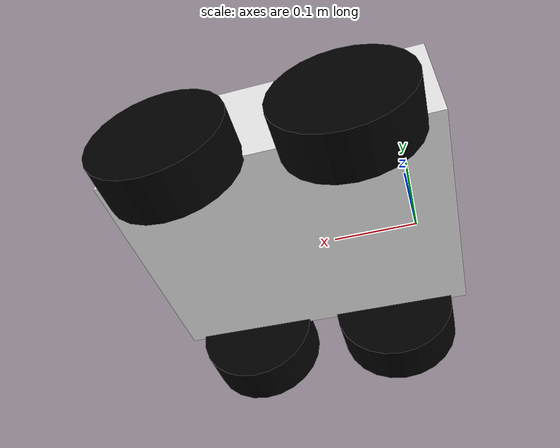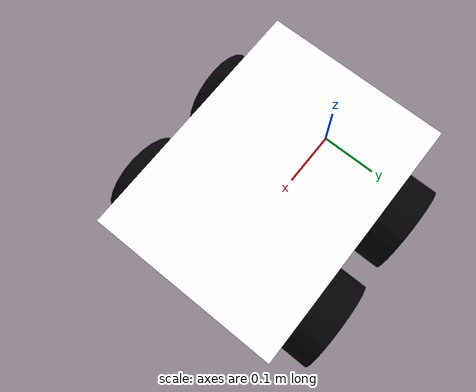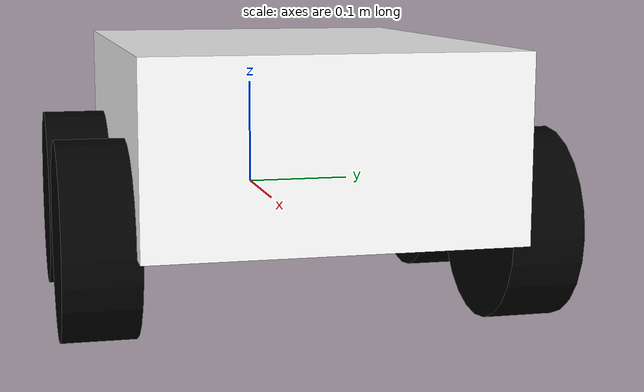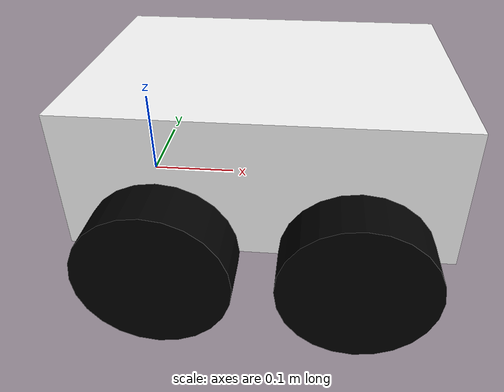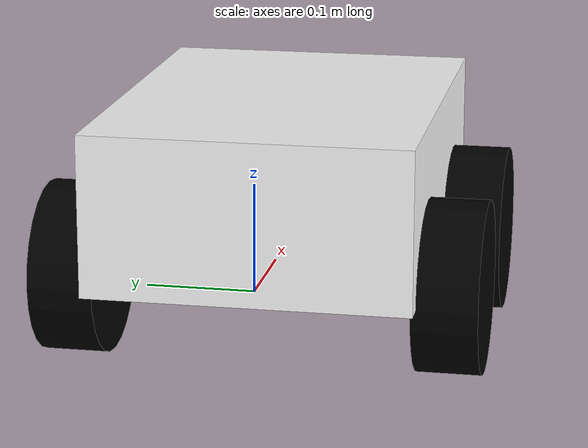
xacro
<?xml version="1.0"?>
<robot xmlns:xacro="http://www.ros.org/wiki/xacro">

  <xacro:include filename="$(find four_wheel)/urdf/inertial_macros.xacro"/>

  <material name="white"><color rgba="1 1 1 1"/></material>
  <material name="black"><color rgba="0 0 0 1"/></material>
  <material name="orange"><color rgba="1 0.4 0 1"/></material>

  <!-- ===================== BASE ===================== -->
  <link name="base_link"></link>

  <joint name="chassis_joint" type="fixed">
    <parent link="base_link"/>
    <child link="chassis"/>
    <origin xyz="0 0 0"/>
  </joint>

  <link name="chassis">
    <visual>
      <origin xyz="0.15 0 0.075"/>
      <geometry><box size="0.4 0.3 0.15"/></geometry>
      <material name="white"/>
    </visual>
    <collision>
      <origin xyz="0.15 0 0.075"/>
      <geometry><box size="0.4 0.3 0.15"/></geometry>
    </collision>
    <xacro:inertial_box mass="2.0" x="0.4" y="0.3" z="0.15">
      <origin xyz="0.15 0 0.075" rpy="0 0 0"/>
    </xacro:inertial_box>
  </link>

  <!-- ===================== WHEEL MACRO ===================== -->
  <xacro:macro name="wheel" params="prefix x_pos y_pos">
    <joint name="${prefix}_wheel_joint" type="continuous">
      <parent link="chassis"/>
      <child link="${prefix}_wheel"/>
      <origin xyz="${x_pos} ${y_pos} 0" rpy="-${pi/2} 0 0"/>
      <axis xyz="0 0 1"/>
    </joint>

    <link name="${prefix}_wheel">
      <visual>
        <geometry><cylinder radius="0.08" length="0.06"/></geometry>
        <material name="black"/>
      </visual>
      <collision>
        <geometry><cylinder radius="0.08" length="0.06"/></geometry>
      </collision>
      <xacro:inertial_cylinder mass="0.3" length="0.06" radius="0.08">
        <origin xyz="0 0 0" rpy="0 0 0"/>
      </xacro:inertial_cylinder>
    </link>

    <gazebo reference="${prefix}_wheel">
      <mu1>1.0</mu1>
      <mu2>1.0</mu2>
    </gazebo>
  </xacro:macro>

  <!-- 4 wheels: front-left, front-right, rear-left, rear-right -->
  <xacro:wheel prefix="front_left"  x_pos="0.25"  y_pos="0.175"/>
  <xacro:wheel prefix="front_right" x_pos="0.25"  y_pos="-0.175"/>
  <xacro:wheel prefix="rear_left"   x_pos="0.05"  y_pos="0.175"/>
  <xacro:wheel prefix="rear_right"  x_pos="0.05"  y_pos="-0.175"/>

  <gazebo reference="chassis">
    <material>Gazebo/White</material>
  </gazebo>

</robot>

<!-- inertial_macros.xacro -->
<robot xmlns:xacro="http://www.ros.org/wiki/xacro">

  <xacro:macro name="inertial_box" params="mass x y z *origin">
    <inertial>
      <xacro:insert_block name="origin"/>
      <mass value="${mass}"/>
      <inertia ixx="${(1/12) * mass * (y*y+z*z)}" ixy="0.0" ixz="0.0"
               iyy="${(1/12) * mass * (x*x+z*z)}" iyz="0.0"
               izz="${(1/12) * mass * (x*x+y*y)}"/>
    </inertial>
  </xacro:macro>

  <xacro:macro name="inertial_cylinder" params="mass length radius *origin">
    <inertial>
      <xacro:insert_block name="origin"/>
      <mass value="${mass}"/>
      <inertia ixx="${(1/12) * mass * (3*radius*radius + length*length)}" ixy="0.0" ixz="0.0"
               iyy="${(1/12) * mass * (3*radius*radius + length*length)}" iyz="0.0"
               izz="${(1/2) * mass * radius*radius}"/>
    </inertial>
  </xacro:macro>

</robot>
